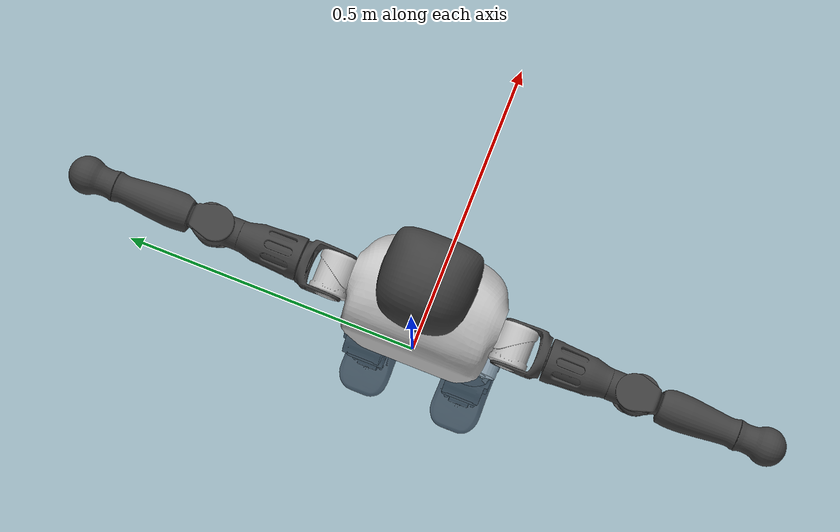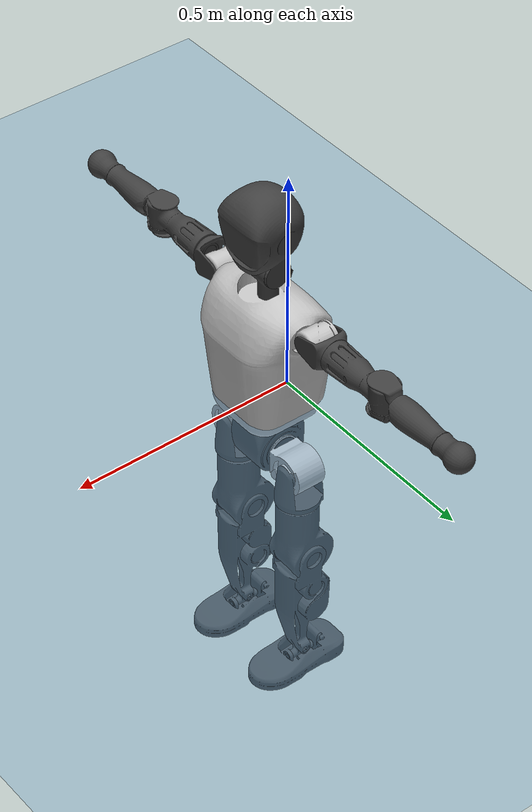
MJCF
<mujoco model="T1">
  <compiler angle="radian" assetdir="assets" balanceinertia="true" inertiafromgeom="false"/>

  <option timestep="0.005" density="1.2" viscosity="2e-05"/>

  <size nkey="1"/>

  <visual>
    <quality shadowsize="8192"/>
    <map shadowclip="0.5"/>
  </visual>

  <default>
    <default class="/">
      <joint armature="0.01" damping="0.01" frictionloss="0.1"/>
      <geom contype="0" conaffinity="0" group="1" solref="-1000 -80"/>
      <site size="0.01 0.005 0.005" group="5"/>
      <general forcelimited="true" biastype="affine" gainprm="25" biasprm="0 -25 -0.6"/>
      <default class="t1">
        <geom rgba="0.25 0.25 0.25 1"/>
        <default class="visual">
          <geom type="mesh" group="2"/>
        </default>
        <default class="collision">
          <geom group="3"/>
        </default>
        <default class="foot">
          <geom size="0.1115 0.05 0.015" type="box" condim="6" group="4" priority="1" solimp="0.015 1 0.015"/>
        </default>
        <default class="reward_collision_sphere">
          <geom group="5" rgba="1 0 0 1"/>
        </default>
      </default>
    </default>
  </default>

  <asset>
    <texture type="skybox" colorspace="auto" name="//unnamed_texture_0" builtin="gradient" rgb1="0.95 0.95 0.95" rgb2="0.95 0.95 0.95" width="100" height="600"/>
    <texture type="2d" colorspace="auto" name="texplane" builtin="checker" rgb1="0.345 0.575 0.748" rgb2="0.345 0.575 0.748" markrgb="1 1 1" width="512" height="512"/>
    <material name="MatPlane" class="/" texture="texplane" texuniform="true" texrepeat="2 2" specular="0.9"/>
    <mesh name="Trunk" class="/" file="Trunk.stl"/>
    <mesh name="H1" class="/" file="H1.stl"/>
    <mesh name="H2" class="/" file="H2.stl"/>
    <mesh name="AL1" class="/" file="AL1.stl"/>
    <mesh name="AL2" class="/" file="AL2.stl"/>
    <mesh name="AL3" class="/" file="AL3.stl"/>
    <mesh name="left_hand_link" class="/" file="left_hand_link.stl"/>
    <mesh name="AR1" class="/" file="AR1.stl"/>
    <mesh name="AR2" class="/" file="AR2.stl"/>
    <mesh name="AR3" class="/" file="AR3.stl"/>
    <mesh name="right_hand_link" class="/" file="right_hand_link.stl"/>
    <mesh name="Waist" class="/" file="Waist.stl"/>
    <mesh name="Hip_Pitch_Left" class="/" file="Hip_Pitch_Left.stl"/>
    <mesh name="Hip_Roll_Left" class="/" file="Hip_Roll_Left.stl"/>
    <mesh name="Hip_Yaw_Left" class="/" file="Hip_Yaw_Left.stl"/>
    <mesh name="Shank_Left" class="/" file="Shank_Left.stl"/>
    <mesh name="Ankle_Cross_Left" class="/" file="Ankle_Cross_Left.stl"/>
    <mesh name="left_foot_link" class="/" file="left_foot_link.stl"/>
    <mesh name="Hip_Pitch_Right" class="/" file="Hip_Pitch_Right.stl"/>
    <mesh name="Hip_Roll_Right" class="/" file="Hip_Roll_Right.stl"/>
    <mesh name="Hip_Yaw_Right" class="/" file="Hip_Yaw_Right.stl"/>
    <mesh name="Shank_Right" class="/" file="Shank_Right.stl"/>
    <mesh name="Ankle_Cross_Right" class="/" file="Ankle_Cross_Right.stl"/>
    <mesh name="right_foot_link" class="/" file="right_foot_link.stl"/>
  </asset>

  <worldbody>
    <geom name="floor" class="/" size="100 100 0.125" type="plane" group="0" material="MatPlane"/>
    <light name="toplight_shadow" class="/" pos="0 0 5" dir="0.0990148 0.0990148 -0.990148" type="directional" ambient="0.04 0.04 0.04" diffuse="0.55 0.55 0.55" specular="0.12 0.12 0.12"/>
    <light name="toplight_fill" class="/" pos="0 0 5" dir="0.0990148 0.0990148 -0.990148" type="directional" castshadow="false" ambient="0.04 0.04 0.04" diffuse="0.3 0.3 0.3" specular="0.08 0.08 0.08"/>
    <body name="trunk" childclass="t1" pos="0.000886045 -0.00180932 0.00108294" quat="1 0.000207058 -0.000771749 -0.00056657">
      <inertial pos="0.0407743 -0.00155421 0.107351" quat="0.999964 -0.000556279 -0.00849134 -0.000358175" mass="8.61789" diaginertia="0.0209107 0.0567303 0.0679701"/>
      <joint name="//unnamed_joint_0" type="free" armature="0" damping="0" frictionloss="0"/>
      <geom name="//unnamed_geom_1" class="visual" rgba="0.76 0.76 0.76 1" mesh="Trunk"/>
      <geom name="//unnamed_geom_2" class="collision" size="0.0677164 0.0902885 0.135433" pos="0.0444861 0 0.123489" type="box"/>
      <geom name="//unnamed_geom_3" class="reward_collision_sphere" size="0.103832" pos="0.0444861 0 0.102907"/>
      <geom name="//unnamed_geom_4" class="reward_collision_sphere" size="0.0135433" pos="0.0444861 0.0797427 0"/>
      <geom name="//unnamed_geom_5" class="reward_collision_sphere" size="0.0135433" pos="0.0444861 -0.0797427 0"/>
      <geom name="//unnamed_geom_6" class="reward_collision_sphere" size="0.0135433" pos="0.0444861 0.100382 0.185233"/>
      <geom name="//unnamed_geom_7" class="reward_collision_sphere" size="0.0135433" pos="0.0444861 -0.100382 0.185233"/>
      <site name="imu" pos="0.00542221 0.00500638 -0.0047651" size="0.00902885"/>
      <camera name="track" pos="0 -1.8763 0" quat="0.707107 0.707107 0 0" mode="trackcom"/>
      <camera name="ego_camera" pos="0.0904551 0 0.43221" quat="-0.5 -0.5 0.5 0.5"/>
      <body name="H1" pos="0.0474375 0.00160946 0.248885" quat="1 -2.78995e-05 1.30837e-05 3.4419e-05">
        <inertial pos="-0.00271307 -0.00233353 0.0601996" quat="0.75608 -0.0113234 0.00459432 0.654365" mass="0.328847" diaginertia="5.4286e-05 0.000163951 0.000173632"/>
        <joint name="AAHead_yaw" pos="0 0 0" axis="0.00311329 -0.000336383 0.999995" range="-1.55617 1.54292" armature="0.00836306" damping="0.0153044" frictionloss="0.101553"/>
        <geom name="//unnamed_geom_8" class="visual" mesh="H1"/>
        <body name="H2" pos="-0.00108176 -0.000180996 0.0640353" quat="1 3.08904e-05 0.000108453 -3.38271e-05">
          <inertial pos="0.00468778 0.000389597 0.101247" quat="0.988924 0.102389 -0.0749509 -0.076989" mass="0.451962" diaginertia="0.000448475 0.00135325 0.00199903"/>
          <joint name="Head_pitch" pos="0 0 0" axis="-6.52698e-05 -1 -4.09937e-06" range="-1.23324 0.359604" armature="0.00796539" damping="0.0046131" frictionloss="0.0946327"/>
          <geom name="//unnamed_geom_9" class="visual" mesh="H2"/>
          <geom name="//unnamed_geom_10" class="collision" size="0.0722308" pos="0.00741435 0 0.113198"/>
          <geom name="//unnamed_geom_11" class="reward_collision_sphere" size="0.0812597" pos="0.0148287 0 0.102907"/>
        </body>
      </body>
      <body name="AL1" pos="0.0429917 0.0995188 0.226349" quat="1 0.000180577 0.00055257 -1.61102e-05">
        <inertial pos="-0.000620724 0.0418974 -0.00033795" quat="0.498765 0.502408 -0.497602 0.50121" mass="0.391606" diaginertia="0.000305128 0.00093399 0.000344425"/>
        <joint name="Left_Shoulder_Pitch" pos="0 0 0" axis="0.0013171 0.999999 0.000807581" range="-3.31231 1.20483" armature="0.00893124" damping="0.00658775" frictionloss="0.0911577"/>
        <geom name="//unnamed_geom_12" class="visual" rgba="0.76 0.76 0.76 1" mesh="AL1"/>
        <body name="AL2" pos="0.000387673 0.0445263 0.000558436" quat="1 -0.000151094 -9.71471e-05 0.000147062">
          <inertial pos="0.00335549 0.0353733 -0.000535416" quat="0.488021 0.512758 -0.487787 0.510861" mass="0.11966" diaginertia="9.13647e-05 0.000251925 0.000206608"/>
          <joint name="Left_Shoulder_Roll" pos="0 0 0" axis="-1 -0.000337295 -4.81052e-05" stiffness="0.00370521" range="-1.55835 1.74441" armature="0.00902809" damping="0.00328068" frictionloss="0.0889959"/>
          <geom name="//unnamed_geom_13" class="visual" mesh="AL2"/>
          <body name="AL3" pos="0.00242033 0.0573625 0.000439531" quat="1 -0.000588253 -0.000307356 -0.000245027">
            <inertial pos="-0.00264679 0.0806143 -0.000480536" quat="0.705537 0.708673 -0.00056168 -0.000129211" mass="0.760061" diaginertia="0.00287221 0.00905747 0.000722048"/>
            <joint name="Left_Elbow_Pitch" pos="0 0 0" axis="0.000134081 -0.999997 -0.00229944" stiffness="0.00155028" range="-2.26575 2.27248" armature="0.0088826" damping="0.00743145" frictionloss="0.092252"/>
            <geom name="//unnamed_geom_14" class="visual" mesh="AL3"/>
            <geom name="//unnamed_geom_15" class="collision" size="0.0270866 0.0677164" pos="0 0.0469075 0" quat="0.707105 0.707108 0 0" type="cylinder"/>
            <geom name="//unnamed_geom_16" class="reward_collision_sphere" size="0.0325039"/>
            <body name="left_hand_link" pos="0.000737102 0.138525 -0.00147516" quat="1 6.60565e-05 -0.000639772 -0.000763445">
              <inertial pos="-8.08854e-05 0.102326 0.00110195" quat="0.708182 0.706029 0.000461675 -0.00037255" mass="0.237448" diaginertia="0.00181379 0.00571714 0.00023571"/>
              <joint name="Left_Elbow_Yaw" pos="0 0 0" axis="0.00317544 0.00109893 0.999994" stiffness="0.00326669" range="-2.44137 0.0204493" armature="0.00886085" damping="0.013225" frictionloss="0.0917076"/>
              <geom name="//unnamed_geom_17" class="visual" mesh="left_hand_link"/>
              <geom name="//unnamed_geom_18" class="collision" size="0.0270866 0.0790025" pos="0 0.121959 0" quat="0.707105 0.707108 0 0" type="cylinder"/>
              <geom name="//unnamed_geom_19" class="reward_collision_sphere" size="0.0451443"/>
              <geom name="//unnamed_geom_20" class="reward_collision_sphere" size="0.031601" pos="0 0.103196 0"/>
              <geom name="//unnamed_geom_21" class="reward_collision_sphere" size="0.031601" pos="0 0.201702 0"/>
            </body>
          </body>
        </body>
      </body>
      <body name="AR1" pos="0.0420383 -0.100962 0.225938" quat="1 0.000298042 0.000134035 -7.28608e-05">
        <inertial pos="-0.000537253 -0.0442036 0.00222726" quat="0.504104 0.49546 -0.504347 0.496017" mass="0.390028" diaginertia="0.000307241 0.000914018 0.000337587"/>
        <joint name="Right_Shoulder_Pitch" pos="0 0 0" axis="0.00669624 -0.999953 0.00695051" range="-1.19922 3.29697" armature="0.0085692" damping="0.00745579" frictionloss="0.0961809"/>
        <geom name="//unnamed_geom_22" class="visual" rgba="0.76 0.76 0.76 1" mesh="AR1"/>
        <body name="AR2" pos="-0.000580966 -0.0429502 0.000620513" quat="1 -8.96043e-05 6.86833e-05 4.09252e-05">
          <inertial pos="0.00261084 -0.0357914 0.000443098" quat="0.512836 0.487365 -0.511837 0.487337" mass="0.120724" diaginertia="9.23745e-05 0.000257407 0.000203645"/>
          <joint name="Right_Shoulder_Roll" pos="0 0 0" axis="-0.999973 -0.00287002 0.00677485" range="-1.74497 1.56453" armature="0.0080819" damping="0.00742447" frictionloss="0.0903023"/>
          <geom name="//unnamed_geom_23" class="visual" mesh="AR2"/>
          <body name="AR3" pos="-0.000613981 -0.0586469 0.00160306" quat="1 -0.000503834 -0.000330268 -0.000393183">
            <inertial pos="0.00210794 -0.0795355 0.00197815" quat="0.708557 0.705652 0.00100596 -0.000383492" mass="0.743969" diaginertia="0.00277607 0.00919177 0.000718108"/>
            <joint name="Right_Elbow_Pitch" pos="0 0 0" axis="-0.000249219 1 -1.64867e-05" range="-2.25942 2.2748" armature="0.00913658" damping="0.00595257" frictionloss="0.101556"/>
            <geom name="//unnamed_geom_24" class="visual" mesh="AR3"/>
            <geom name="//unnamed_geom_25" class="collision" size="0.0270866 0.0677164" pos="0 -0.0469075 0" quat="0.707105 0.707108 0 0" type="cylinder"/>
            <geom name="//unnamed_geom_26" class="reward_collision_sphere" size="0.0325039"/>
            <body name="right_hand_link" pos="-0.00102642 -0.138226 -0.00152104" quat="1 -3.08134e-06 7.80053e-06 2.02668e-05">
              <inertial pos="-0.000438932 -0.103685 0.00116222" quat="0.706387 0.707826 8.05871e-05 -2.53938e-05" mass="0.243646" diaginertia="0.00188085 0.0060758 0.000257396"/>
              <joint name="Right_Elbow_Yaw" pos="0 0 0" axis="-0.00422262 0.00847654 0.999955" range="0.0199046 2.44062" armature="0.00933488" damping="0.00873189" frictionloss="0.0900987"/>
              <geom name="//unnamed_geom_27" class="visual" mesh="right_hand_link"/>
              <geom name="//unnamed_geom_28" class="collision" size="0.0270866 0.0790025" pos="0 -0.121959 0" quat="0.707105 0.707108 0 0" type="cylinder"/>
              <geom name="//unnamed_geom_29" class="reward_collision_sphere" size="0.0451443"/>
              <geom name="//unnamed_geom_30" class="reward_collision_sphere" size="0.031601" pos="0 -0.103196 0"/>
              <geom name="//unnamed_geom_31" class="reward_collision_sphere" size="0.031601" pos="0 -0.201702 0"/>
            </body>
          </body>
        </body>
      </body>
      <body name="Waist" pos="0.0448714 -0.000287741 -0.119799" quat="0.999999 -0.000246347 -0.000846328 0.00118142">
        <inertial pos="-0.000786931 0.000415367 0.00701156" quat="0.984043 0.000395223 -0.177373 0.0140361" mass="1.87454" diaginertia="0.00121297 0.00395021 0.00560245"/>
        <joint name="Waist" pos="0 0 0" axis="-0.00124135 0.00128427 0.999998" range="-1.57158 1.55273" armature="0.00906344" damping="0.0122028" frictionloss="0.0888646"/>
        <geom name="//unnamed_geom_32" class="visual" mesh="Waist"/>
        <body name="Hip_Pitch_Left" pos="0.00164764 0.0977129 0.0013925" quat="1 3.98877e-05 6.70709e-05 0.000243557">
          <inertial pos="0.00289209 -0.00653848 -0.0185454" quat="0.976103 0.216197 0.0204873 0.00790168" mass="0.757133" diaginertia="0.000394748 0.00107923 0.00146649"/>
          <joint name="Left_Hip_Pitch" pos="0 0 0" axis="-0.00151952 0.999998 0.000904646" stiffness="0.00741086" range="-1.81514 1.58515" armature="0.009004" damping="0.0111027" frictionloss="0.0924409"/>
          <geom name="//unnamed_geom_33" class="visual" rgba="0.76 0.76 0.76 1" mesh="Hip_Pitch_Left"/>
          <body name="Hip_Roll_Left" pos="-0.00129901 9.08501e-05 -0.0240477" quat="1 4.0995e-06 -1.09766e-05 8.6183e-06">
            <inertial pos="0.00125696 -0.00238409 -0.0547637" quat="0.707119 -0.00641795 -0.00643902 0.707036" mass="0.280801" diaginertia="0.000376621 0.0010579 0.000605462"/>
            <joint name="Left_Hip_Roll" pos="0 0 0" axis="-0.999992 -0.00292194 -0.00261927" range="-1.55732 0.197583" armature="0.00869326" damping="0" frictionloss="0.0958962"/>
            <geom name="//unnamed_geom_34" class="visual" mesh="Hip_Roll_Left"/>
            <geom name="//unnamed_geom_35" class="reward_collision_sphere" size="0.0496587"/>
            <body name="Hip_Yaw_Left" pos="-0.000335505 -0.000472715 -0.0843284" quat="1 0.000126031 2.17556e-08 -5.0527e-05">
              <inertial pos="-0.00522341 -0.0012381 -0.0929722" quat="0.699946 -0.032569 -0.0338249 0.712651" mass="1.59251" diaginertia="0.00570943 0.0178523 0.00291044"/>
              <joint name="Left_Hip_Yaw" pos="0 0 0" axis="-0.000519555 4.42241e-05 -1" range="-1.05349 1.00551" armature="0.00917434" damping="0.00579698" frictionloss="0.0893252"/>
              <geom name="//unnamed_geom_36" class="visual" mesh="Hip_Yaw_Left"/>
              <geom name="//unnamed_geom_37" class="collision" size="0.0451443 0.0722308" type="cylinder"/>
              <body name="Shank_Left" pos="-0.0113201 0.000181319 -0.140912" quat="1 6.61841e-05 -6.73536e-06 9.90269e-06">
                <inertial pos="-0.00562612 5.24989e-05 -0.127688" quat="0.997574 0.00175949 -0.0240237 0.0653179" mass="1.26512" diaginertia="0.0077698 0.024133 0.00208885"/>
                <joint name="Left_Knee_Pitch" pos="0 0 0" axis="-0.00405655 0.999984 -0.00390487" range="-0.00114479 2.33153" armature="0.00942652" damping="0.00272451" frictionloss="0.0881082"/>
                <geom name="//unnamed_geom_38" class="visual" mesh="Shank_Left"/>
                <geom name="//unnamed_geom_39" class="collision" size="0.0451443 0.0677164" pos="0 0 -0.123489" type="cylinder"/>
                <geom name="//unnamed_geom_40" class="reward_collision_sphere" size="0.0586875"/>
                <body name="Ankle_Cross_Left" pos="0.00161151 -0.00032257 -0.287196" quat="1 -3.5041e-05 0.00010534 8.30064e-05">
                  <inertial pos="-0.00516351 -0.000612115 -0.00841233" quat="0.444046 0.550864 0.550057 0.443633" mass="0.0536365" diaginertia="6.46874e-06 1.85549e-05 1.2898e-05"/>
                  <joint name="Left_Ankle_Pitch" pos="0 0 0" axis="-0.000473548 1 0.000298686" range="-0.873014 0.350531" armature="0.0101023" damping="0.0183148" frictionloss="0.0924266"/>
                  <geom name="//unnamed_geom_41" class="visual" mesh="Ankle_Cross_Left"/>
                  <body name="left_foot_link" pos="7.70228e-05 -0.00133912 -0.0112586" quat="0.999999 0.000747403 0.000362473 -0.00090118">
                    <inertial pos="-0.00136145 0.000223186 -0.00921349" quat="-0.0089314 0.624801 0.00156821 0.780731" mass="0.520579" diaginertia="0.000625282 0.00174225 0.00256626"/>
                    <joint name="Left_Ankle_Roll" pos="0 0 0" axis="-0.999902 0.00485743 0.0131131" range="-0.458916 0.451154" armature="0.00906719" damping="0.000213364" frictionloss="0.0940439"/>
                    <geom name="//unnamed_geom_42" class="visual" mesh="left_foot_link"/>
                    <geom name="left_foot" class="foot" size="0.10898 0.0421934 0.0140777" pos="0.00741435 0 -0.0154361"/>
                    <geom name="//unnamed_geom_44" class="reward_collision_sphere" size="0.04695" pos="0.00741435 0 -0.0154361"/>
                    <geom name="//unnamed_geom_45" class="reward_collision_sphere" size="0.0270866" pos="0.0704363 -0.0215774 -0.0154361"/>
                    <geom name="//unnamed_geom_46" class="reward_collision_sphere" size="0.0270866" pos="-0.0519005 -0.0215774 -0.0154361"/>
                    <site name="left_foot" class="foot" pos="0.00741435 0 -0.0154361" size="0.00902885"/>
                  </body>
                </body>
              </body>
            </body>
          </body>
        </body>
        <body name="Hip_Pitch_Right" pos="0.00140531 -0.0993051 -0.000870985" quat="1 0.0001085 -7.79577e-06 5.28731e-05">
          <inertial pos="-0.00196907 0.00513434 -0.0175096" quat="0.972959 -0.230242 0.0183525 -0.00135488" mass="0.748796" diaginertia="0.000411147 0.00108138 0.00142541"/>
          <joint name="Right_Hip_Pitch" pos="0 0 0" axis="-0.0027074 -0.999996 0.00107447" range="-1.55447 1.78848" armature="0.00945297" damping="0" frictionloss="0.0864585"/>
          <geom name="//unnamed_geom_47" class="visual" rgba="0.76 0.76 0.76 1" mesh="Hip_Pitch_Right"/>
          <body name="Hip_Roll_Right" pos="-0.00165281 0.000594625 -0.0216604" quat="1 -5.70207e-05 -0.000206787 -0.000225113">
            <inertial pos="0.000401913 -0.0012227 -0.0542747" quat="0.701891 -0.00987448 -0.00916907 0.712156" mass="0.280659" diaginertia="0.000402017 0.00111734 0.00059177"/>
            <joint name="Right_Hip_Roll" pos="0 0 0" axis="-0.999988 0.00304286 -0.0037227" range="-0.19699 1.57647" armature="0.00877089" damping="0.00335987" frictionloss="0.0936744"/>
            <geom name="//unnamed_geom_48" class="visual" mesh="Hip_Roll_Right"/>
            <geom name="//unnamed_geom_49" class="reward_collision_sphere" size="0.0496587"/>
            <body name="Hip_Yaw_Right" pos="-0.00152834 0.000440469 -0.0861791" quat="1 0.000488657 -0.000137959 0.000131967">
              <inertial pos="-0.00522196 0.000202092 -0.0916752" quat="0.714778 -0.0317013 -0.0333487 0.697836" mass="1.5788" diaginertia="0.00591283 0.0185239 0.00306885"/>
              <joint name="Right_Hip_Yaw" pos="0 0 0" axis="3.89745e-05 0.000939844 -1" stiffness="0.00244184" range="-0.998054 1.01296" armature="0.00896429" damping="0.0212661" frictionloss="0.0948547"/>
              <geom name="//unnamed_geom_50" class="visual" mesh="Hip_Yaw_Right"/>
              <geom name="//unnamed_geom_51" class="collision" size="0.0451443 0.0722308" type="cylinder"/>
              <body name="Shank_Right" pos="-0.0117067 0.000388144 -0.139931" quat="1 -0.000316844 0.000193189 0.000103461">
                <inertial pos="-0.0046043 -0.00182387 -0.126161" quat="0.999206 -0.0059842 -0.023702 -0.0314765" mass="1.34121" diaginertia="0.00793835 0.0252801 0.00220196"/>
                <joint name="Right_Knee_Pitch" pos="0 0 0" axis="-0.0076976 -0.999968 -0.00234582" range="-2.3821 -0.00203517" armature="0.00943234" damping="0.00744965" frictionloss="0.0903037"/>
                <geom name="//unnamed_geom_52" class="visual" mesh="Shank_Right"/>
                <geom name="//unnamed_geom_53" class="collision" size="0.0451443 0.0677164" pos="0 0 -0.123489" type="cylinder"/>
                <geom name="//unnamed_geom_54" class="reward_collision_sphere" size="0.0586875"/>
                <body name="Ankle_Cross_Right" pos="0.000353831 -0.00156447 -0.289423" quat="1 -6.11955e-06 -5.33766e-06 9.58761e-06">
                  <inertial pos="-0.00331997 0.000160921 -0.00830105" quat="0.442809 0.55144 0.551115 0.442838" mass="0.0538044" diaginertia="6.69645e-06 1.863e-05 1.34873e-05"/>
                  <joint name="Right_Ankle_Pitch" pos="0 0 0" axis="0.000256932 -0.999964 0.008427" range="-0.343194 0.845653" armature="0.00903048" damping="0.00723931" frictionloss="0.0896412"/>
                  <geom name="//unnamed_geom_55" class="visual" mesh="Ankle_Cross_Right"/>
                  <body name="right_foot_link" pos="0.000127933 0.000600203 -0.0105626" quat="1 -0.000119396 -1.54464e-05 9.52087e-05">
                    <inertial pos="7.64956e-06 0.00158122 -0.0118328" quat="0.00534947 0.61633 0.00426505 0.787458" mass="0.49204" diaginertia="0.000587678 0.0016763 0.00237279"/>
                    <joint name="Right_Ankle_Roll" pos="0 0 0" axis="-0.999985 0.00518774 -0.00174884" range="-0.468335 0.484297" armature="0.00785165" damping="0" frictionloss="0.0943247"/>
                    <geom name="//unnamed_geom_56" class="visual" mesh="right_foot_link"/>
                    <geom name="right_foot" class="foot" size="0.096999 0.0427692 0.0143405" pos="0.00741435 0 -0.0154361"/>
                    <geom name="//unnamed_geom_58" class="reward_collision_sphere" size="0.0361154"/>
                    <geom name="//unnamed_geom_59" class="reward_collision_sphere" size="0.0270866" pos="0.00741435 0 -0.0154361"/>
                    <geom name="//unnamed_geom_60" class="reward_collision_sphere" size="0.0270866" pos="0.0704363 0.0215774 -0.0154361"/>
                    <geom name="//unnamed_geom_61" class="reward_collision_sphere" size="0.0270866" pos="-0.0519005 0.0215774 -0.0154361"/>
                    <site name="right_foot" class="foot" pos="0.00741435 0 -0.0154361" size="0.00902885"/>
                  </body>
                </body>
              </body>
            </body>
          </body>
        </body>
      </body>
    </body>
  </worldbody>

  <contact>
    <pair class="/" geom1="floor" geom2="left_foot" name="//unnamed_contact_0"/>
    <pair class="/" geom1="floor" geom2="right_foot" name="//unnamed_contact_1"/>
  </contact>

  <actuator>
    <general name="AAHead_yaw" class="/" joint="AAHead_yaw" forcerange="-6.37337 6.37337" gainprm="22.9303" biasprm="0 -22.9303 -0.528548"/>
    <general name="Head_pitch" class="/" joint="Head_pitch" forcerange="-6.34584 6.34584" gainprm="22.9303" biasprm="0 -22.9303 -0.528548"/>
    <general name="Left_Shoulder_Pitch" class="/" joint="Left_Shoulder_Pitch" forcerange="-14.666 14.666" gainprm="22.9303" biasprm="0 -22.9303 -0.528548"/>
    <general name="Left_Shoulder_Roll" class="/" joint="Left_Shoulder_Roll" forcerange="-14.9875 14.9875" gainprm="22.9303" biasprm="0 -22.9303 -0.528548"/>
    <general name="Left_Elbow_Pitch" class="/" joint="Left_Elbow_Pitch" forcerange="-16.6853 16.6853" gainprm="22.9303" biasprm="0 -22.9303 -0.528548"/>
    <general name="Left_Elbow_Yaw" class="/" joint="Left_Elbow_Yaw" forcerange="-16.534 16.534" gainprm="22.9303" biasprm="0 -22.9303 -0.528548"/>
    <general name="Right_Shoulder_Pitch" class="/" joint="Right_Shoulder_Pitch" forcerange="-16.6226 16.6226" gainprm="22.9303" biasprm="0 -22.9303 -0.528548"/>
    <general name="Right_Shoulder_Roll" class="/" joint="Right_Shoulder_Roll" forcerange="-16.8223 16.8223" gainprm="22.9303" biasprm="0 -22.9303 -0.528548"/>
    <general name="Right_Elbow_Pitch" class="/" joint="Right_Elbow_Pitch" forcerange="-15.9767 15.9767" gainprm="22.9303" biasprm="0 -22.9303 -0.528548"/>
    <general name="Right_Elbow_Yaw" class="/" joint="Right_Elbow_Yaw" forcerange="-16.7968 16.7968" gainprm="22.9303" biasprm="0 -22.9303 -0.528548"/>
    <general name="Waist" class="/" joint="Waist" forcerange="-25.6677 25.6677" gainprm="22.9303" biasprm="0 -22.9303 -0.528548"/>
    <general name="Left_Hip_Pitch" class="/" joint="Left_Hip_Pitch" forcerange="-40.855 40.855" gainprm="22.9303" biasprm="0 -22.9303 -0.528548"/>
    <general name="Left_Hip_Roll" class="/" joint="Left_Hip_Roll" forcerange="-26.1299 26.1299" gainprm="22.9303" biasprm="0 -22.9303 -0.528548"/>
    <general name="Left_Hip_Yaw" class="/" joint="Left_Hip_Yaw" forcerange="-27.0874 27.0874" gainprm="22.9303" biasprm="0 -22.9303 -0.528548"/>
    <general name="Left_Knee_Pitch" class="/" joint="Left_Knee_Pitch" forcerange="-54.4076 54.4076" gainprm="22.9303" biasprm="0 -22.9303 -0.528548"/>
    <general name="Left_Ankle_Pitch" class="/" joint="Left_Ankle_Pitch" forcerange="-18.0375 18.0375" gainprm="22.9303" biasprm="0 -22.9303 -0.528548"/>
    <general name="Left_Ankle_Roll" class="/" joint="Left_Ankle_Roll" forcerange="-13.0275 13.0275" gainprm="22.9303" biasprm="0 -22.9303 -0.528548"/>
    <general name="Right_Hip_Pitch" class="/" joint="Right_Hip_Pitch" forcerange="-43.664 43.664" gainprm="22.9303" biasprm="0 -22.9303 -0.528548"/>
    <general name="Right_Hip_Roll" class="/" joint="Right_Hip_Roll" forcerange="-29.5335 29.5335" gainprm="22.9303" biasprm="0 -22.9303 -0.528548"/>
    <general name="Right_Hip_Yaw" class="/" joint="Right_Hip_Yaw" forcerange="-27.4316 27.4316" gainprm="22.9303" biasprm="0 -22.9303 -0.528548"/>
    <general name="Right_Knee_Pitch" class="/" joint="Right_Knee_Pitch" forcerange="-53.5771 53.5771" gainprm="22.9303" biasprm="0 -22.9303 -0.528548"/>
    <general name="Right_Ankle_Pitch" class="/" joint="Right_Ankle_Pitch" forcerange="-16.4391 16.4391" gainprm="22.9303" biasprm="0 -22.9303 -0.528548"/>
    <general name="Right_Ankle_Roll" class="/" joint="Right_Ankle_Roll" forcerange="-14.2825 14.2825" gainprm="22.9303" biasprm="0 -22.9303 -0.528548"/>
  </actuator>

  <sensor>
    <gyro site="imu" name="imu_angular_velocity"/>
    <velocimeter site="imu" name="imu_linear_velocity"/>
    <framelinvel objtype="site" objname="left_foot" name="left_foot_global_linear_velocity"/>
    <framelinvel objtype="site" objname="right_foot" name="right_foot_global_linear_velocity"/>
  </sensor>

  <keyframe>
    <key name="home" qpos="0 0 0.6385 1 0 0 0 0 0 0 1.4 0 -0.4 0 -1.4 0 0.4 0 -0.4 0 0 0.8 -0.4 0 0.4 0 0 -0.8 0.4 0"/>
  </keyframe>
</mujoco>
